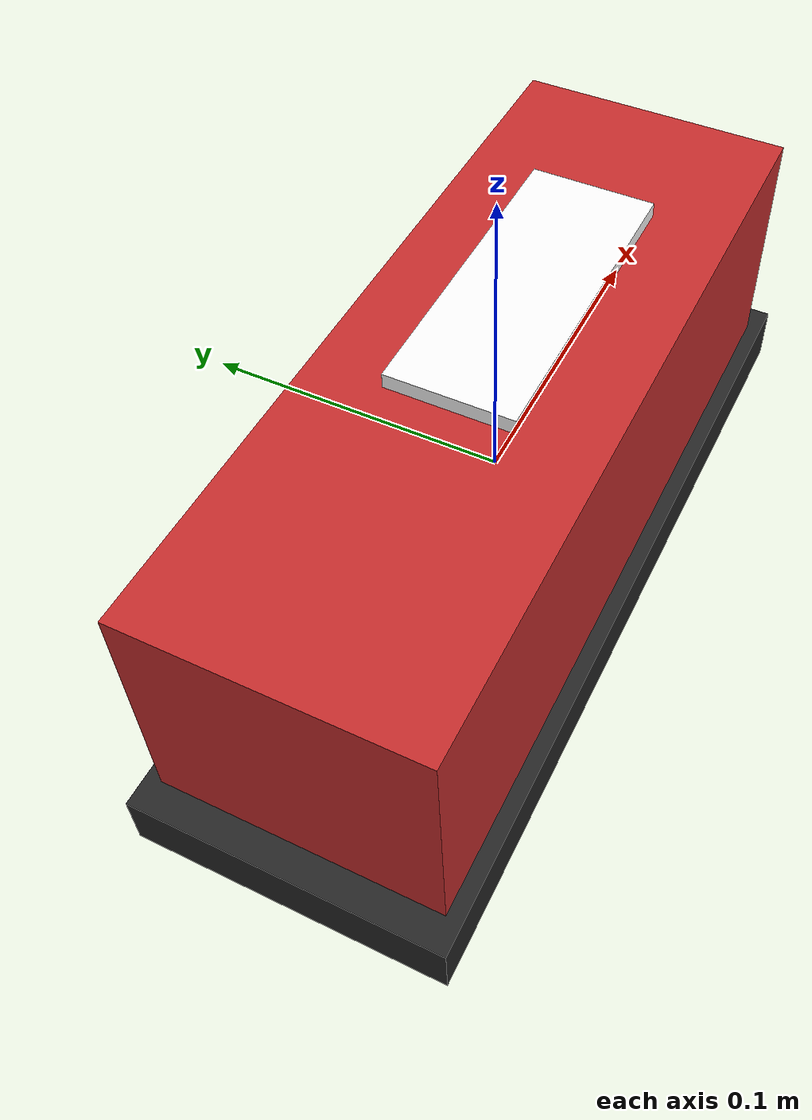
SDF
<?xml version="1.0"?>
<!-- Zapatilla — caja elongada + "punta" (la suela tendida en el suelo). -->
<sdf version="1.8">
  <model name="shoe">
    <static>true</static>
    <link name="link">
      <collision name="c">
        <geometry><box><size>0.27 0.10 0.10</size></box></geometry>
      </collision>
      <visual name="sole">
        <pose>0 0 -0.04 0 0 0</pose>
        <geometry><box><size>0.27 0.10 0.02</size></box></geometry>
        <material>
          <ambient>0.10 0.10 0.10 1</ambient>
          <diffuse>0.15 0.15 0.15 1</diffuse>
        </material>
      </visual>
      <visual name="upper">
        <pose>0 0 0.01 0 0 0</pose>
        <geometry><box><size>0.25 0.09 0.08</size></box></geometry>
        <material>
          <ambient>0.55 0.10 0.10 1</ambient>
          <diffuse>0.78 0.18 0.18 1</diffuse>
        </material>
      </visual>
      <visual name="laces">
        <pose>0.02 0 0.055 0 0 0</pose>
        <geometry><box><size>0.10 0.04 0.005</size></box></geometry>
        <material>
          <ambient>0.92 0.92 0.92 1</ambient>
          <diffuse>0.98 0.98 0.98 1</diffuse>
        </material>
      </visual>
    </link>
  </model>
</sdf>
